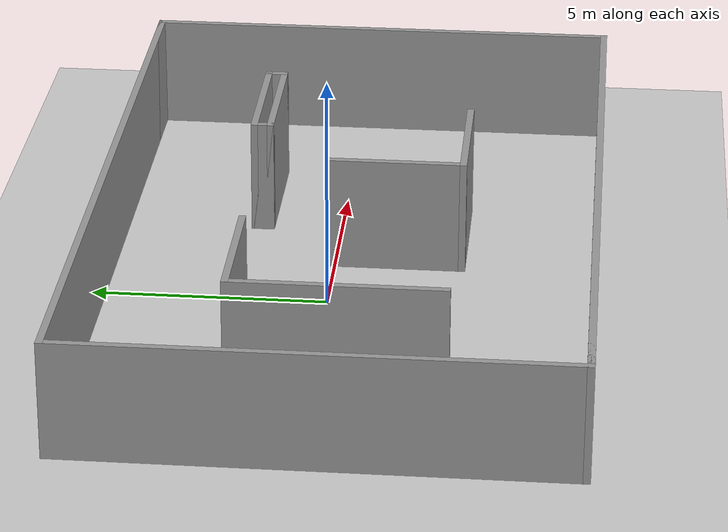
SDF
<sdf version="1.7">
 <world name="default">
  <light name="sun" type="directional">
   <pose>0 0 10 0 -0 0</pose>
   <diffuse>0.8 0.8 0.8 1</diffuse>
   <specular>0.2 0.2 0.2 1</specular>
   <attenuation>
    <range>1000</range>
    <constant>0.9</constant>
    <linear>0.01</linear>
    <quadratic>0.001</quadratic>
   </attenuation>
   <direction>-0.5 0.1 -0.9</direction>
   <spot><inner_angle>0</inner_angle><outer_angle>0</outer_angle><falloff>0</falloff></spot>
  </light>
  <model name="ground_plane">
   <static>1</static>
   <link name="link">
    <collision name="collision">
     <geometry><plane><normal>0 0 1</normal><size>100 100</size></plane></geometry>
     <surface><friction><ode><mu>100</mu><mu2>50</mu2></ode></friction></surface>
    </collision>
    <visual name="visual">
     <cast_shadows>0</cast_shadows>
     <geometry><plane><normal>0 0 1</normal><size>100 100</size></plane></geometry>
     <material>
      <script><uri>file://media/materials/scripts/gazebo.material</uri><name>Gazebo/Grey</name></script>
     </material>
    </visual>
   </link>
  </model>
  <gravity>0 0 -9.8</gravity>
  <magnetic_field>6e-06 2.3e-05 -4.2e-05</magnetic_field>
  <atmosphere type="adiabatic"/>
  <physics type="ode">
   <max_step_size>0.001</max_step_size>
   <real_time_factor>1</real_time_factor>
   <real_time_update_rate>1000</real_time_update_rate>
  </physics>
  <scene><ambient>0.4 0.4 0.4 1</ambient><background>0.7 0.7 0.7 1</background><shadows>1</shadows></scene>
  <audio><device>default</device></audio>
  <spherical_coordinates>
   <surface_model>EARTH_WGS84</surface_model>
   <latitude_deg>0</latitude_deg>
   <longitude_deg>0</longitude_deg>
   <elevation>0</elevation>
   <heading_deg>0</heading_deg>
  </spherical_coordinates>
  <model name="Untitled">
   <pose>1.13707 -0.40353 0 0 -0 0</pose>
   <link name="Wall_10">
    <collision name="Wall_10_Collision">
     <geometry><box><size>10.5 0.15 2.5</size></box></geometry>
     <pose>0 0 1.25 0 -0 0</pose>
    </collision>
    <visual name="Wall_10_Visual">
     <pose>0 0 1.25 0 -0 0</pose>
     <geometry><box><size>10.5 0.15 2.5</size></box></geometry>
     <material>
      <script><uri>file://media/materials/scripts/gazebo.material</uri><name>Gazebo/Grey</name></script>
      <ambient>1 1 1 1</ambient>
     </material>
     <meta><layer>0</layer></meta>
    </visual>
    <pose>-8.05 -0 0 0 -0 1.5708</pose>
   </link>
   <link name="Wall_12">
    <collision name="Wall_12_Collision">
     <geometry><box><size>16.25 0.15 2.5</size></box></geometry>
     <pose>0 0 1.25 0 -0 0</pose>
    </collision>
    <visual name="Wall_12_Visual">
     <pose>0 0 1.25 0 -0 0</pose>
     <geometry><box><size>16.25 0.15 2.5</size></box></geometry>
     <material>
      <script><uri>file://media/materials/scripts/gazebo.material</uri><name>Gazebo/Grey</name></script>
      <ambient>1 1 1 1</ambient>
     </material>
     <meta><layer>0</layer></meta>
    </visual>
    <pose>0 -5.175 0 0 -0 0</pose>
   </link>
   <link name="Wall_13">
    <collision name="Wall_13_Collision">
     <geometry><box><size>10.5 0.15 2.5</size></box></geometry>
     <pose>0 0 1.25 0 -0 0</pose>
    </collision>
    <visual name="Wall_13_Visual">
     <pose>0 0 1.25 0 -0 0</pose>
     <geometry><box><size>10.5 0.15 2.5</size></box></geometry>
     <material>
      <script><uri>file://media/materials/scripts/gazebo.material</uri><name>Gazebo/Grey</name></script>
      <ambient>1 1 1 1</ambient>
     </material>
     <meta><layer>0</layer></meta>
    </visual>
    <pose>8.05 -0 0 0 -0 1.5708</pose>
   </link>
   <link name="Wall_15">
    <collision name="Wall_15_Collision">
     <geometry><box><size>3 0.15 2.5</size></box></geometry>
     <pose>0 0 1.25 0 -0 0</pose>
    </collision>
    <visual name="Wall_15_Visual">
     <pose>0 0 1.25 0 -0 0</pose>
     <geometry><box><size>3 0.15 2.5</size></box></geometry>
     <material>
      <script><uri>file://media/materials/scripts/gazebo.material</uri><name>Gazebo/Grey</name></script>
      <ambient>1 1 1 1</ambient>
     </material>
     <meta><layer>0</layer></meta>
    </visual>
    <pose>6.625 5.175 0 0 -0 3.14159</pose>
   </link>
   <link name="Wall_17">
    <collision name="Wall_17_Collision">
     <geometry><box><size>3 0.15 2.5</size></box></geometry>
     <pose>0 0 1.25 0 -0 0</pose>
    </collision>
    <visual name="Wall_17_Visual">
     <pose>0 0 1.25 0 -0 0</pose>
     <geometry><box><size>3 0.15 2.5</size></box></geometry>
     <material>
      <script><uri>file://media/materials/scripts/gazebo.material</uri><name>Gazebo/Grey</name></script>
      <ambient>1 1 1 1</ambient>
     </material>
     <meta><layer>0</layer></meta>
    </visual>
    <pose>3.775 2.325 0 0 -0 3.14159</pose>
   </link>
   <link name="Wall_18">
    <collision name="Wall_18_Collision">
     <geometry><box><size>0.5 0.15 2.5</size></box></geometry>
     <pose>0 0 1.25 0 -0 0</pose>
    </collision>
    <visual name="Wall_18_Visual">
     <pose>0 0 1.25 0 -0 0</pose>
     <geometry><box><size>0.5 0.15 2.5</size></box></geometry>
     <material>
      <script><uri>file://media/materials/scripts/gazebo.material</uri><name>Gazebo/Grey</name></script>
      <ambient>1 1 1 1</ambient>
     </material>
     <meta><layer>0</layer></meta>
    </visual>
    <pose>2.35 2.15 0 0 -0 -1.5708</pose>
   </link>
   <link name="Wall_19">
    <collision name="Wall_19_Collision">
     <geometry><box><size>3 0.15 2.5</size></box></geometry>
     <pose>0 0 1.25 0 -0 0</pose>
    </collision>
    <visual name="Wall_19_Visual">
     <pose>0 0 1.25 0 -0 0</pose>
     <geometry><box><size>3 0.15 2.5</size></box></geometry>
     <material>
      <script><uri>file://media/materials/scripts/gazebo.material</uri><name>Gazebo/Grey</name></script>
      <ambient>1 1 1 1</ambient>
     </material>
     <meta><layer>0</layer></meta>
    </visual>
    <pose>3.775 1.975 0 0 -0 0</pose>
   </link>
   <link name="Wall_20">
    <collision name="Wall_20_Collision">
     <geometry><box><size>0.5 0.15 2.5</size></box></geometry>
     <pose>0 0 1.25 0 -0 0</pose>
    </collision>
    <visual name="Wall_20_Visual">
     <pose>0 0 1.25 0 -0 0</pose>
     <geometry><box><size>0.5 0.15 2.5</size></box></geometry>
     <material>
      <script><uri>file://media/materials/scripts/gazebo.material</uri><name>Gazebo/Grey</name></script>
      <ambient>1 1 1 1</ambient>
     </material>
     <meta><layer>0</layer></meta>
    </visual>
    <pose>5.2 2.15 0 0 -0 1.5708</pose>
   </link>
   <link name="Wall_22">
    <collision name="Wall_22_Collision">
     <geometry><box><size>3 0.15 2.5</size></box></geometry>
     <pose>0 0 1.25 0 -0 0</pose>
    </collision>
    <visual name="Wall_22_Visual">
     <pose>0 0 1.25 0 -0 0</pose>
     <geometry><box><size>3 0.15 2.5</size></box></geometry>
     <material>
      <script><uri>file://media/materials/scripts/gazebo.material</uri><name>Gazebo/Grey</name></script>
      <ambient>1 1 1 1</ambient>
     </material>
     <meta><layer>0</layer></meta>
    </visual>
    <pose>-6.625 -5.175 0 0 -0 0</pose>
   </link>
   <link name="Wall_26">
    <collision name="Wall_26_Collision">
     <geometry><box><size>4.5 0.15 2.5</size></box></geometry>
     <pose>0 0 1.25 0 -0 0</pose>
    </collision>
    <visual name="Wall_26_Visual">
     <pose>0 0 1.25 0 -0 0</pose>
     <geometry><box><size>4.5 0.15 2.5</size></box></geometry>
     <material>
      <script><uri>file://media/materials/scripts/gazebo.material</uri><name>Gazebo/Grey</name></script>
      <ambient>1 1 1 1</ambient>
     </material>
     <meta><layer>0</layer></meta>
    </visual>
    <pose>-5.2 -0.15 0 0 -0 1.5708</pose>
   </link>
   <link name="Wall_27">
    <collision name="Wall_27_Collision">
     <geometry><box><size>3 0.15 2.5</size></box></geometry>
     <pose>0 0 1.25 0 -0 0</pose>
    </collision>
    <visual name="Wall_27_Visual">
     <pose>0 0 1.25 0 -0 0</pose>
     <geometry><box><size>3 0.15 2.5</size></box></geometry>
     <material>
      <script><uri>file://media/materials/scripts/gazebo.material</uri><name>Gazebo/Grey</name></script>
      <ambient>1 1 1 1</ambient>
     </material>
     <meta><layer>0</layer></meta>
    </visual>
    <pose>-3.775 2.025 0 0 -0 0</pose>
   </link>
   <link name="Wall_3">
    <collision name="Wall_3_Collision">
     <geometry><box><size>16.25 0.15 2.5</size></box></geometry>
     <pose>0 0 1.25 0 -0 0</pose>
    </collision>
    <visual name="Wall_3_Visual">
     <pose>0 0 1.25 0 -0 0</pose>
     <geometry><box><size>16.25 0.15 2.5</size></box></geometry>
     <material>
      <script><uri>file://media/materials/scripts/gazebo.material</uri><name>Gazebo/Grey</name></script>
      <ambient>1 1 1 1</ambient>
     </material>
     <meta><layer>0</layer></meta>
    </visual>
    <pose>0 5.175 0 0 -0 0</pose>
   </link>
   <link name="Wall_31">
    <collision name="Wall_31_Collision">
     <geometry><box><size>3 0.15 2.5</size></box></geometry>
     <pose>0 0 1.25 0 -0 0</pose>
    </collision>
    <visual name="Wall_31_Visual">
     <pose>0 0 1.25 0 -0 0</pose>
     <geometry><box><size>3 0.15 2.5</size></box></geometry>
     <material>
      <script><uri>file://media/materials/scripts/gazebo.material</uri><name>Gazebo/Grey</name></script>
      <ambient>1 1 1 1</ambient>
     </material>
     <meta><layer>0</layer></meta>
    </visual>
    <pose>0.65 -0.9 0 0 -0 1.5708</pose>
   </link>
   <link name="Wall_33">
    <collision name="Wall_33_Collision">
     <geometry><box><size>3 0.15 2.5</size></box></geometry>
     <pose>0 0 1.25 0 -0 0</pose>
    </collision>
    <visual name="Wall_33_Visual">
     <pose>0 0 1.25 0 -0 0</pose>
     <geometry><box><size>3 0.15 2.5</size></box></geometry>
     <material>
      <script><uri>file://media/materials/scripts/gazebo.material</uri><name>Gazebo/Grey</name></script>
      <ambient>1 1 1 1</ambient>
     </material>
     <meta><layer>0</layer></meta>
    </visual>
    <pose>2.075 -2.325 0 0 -0 0</pose>
   </link>
   <static>1</static>
  </model>
 </world>
</sdf>
